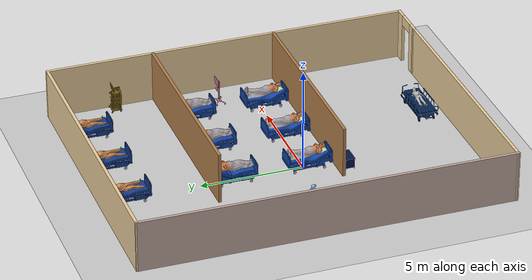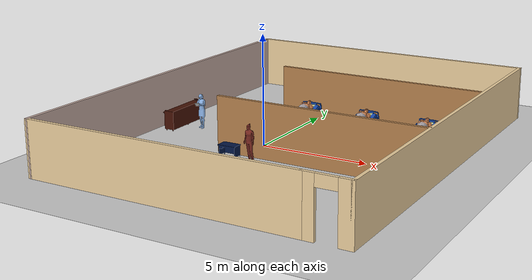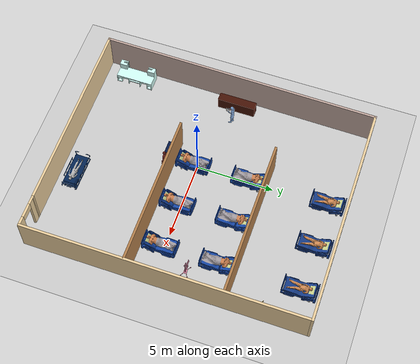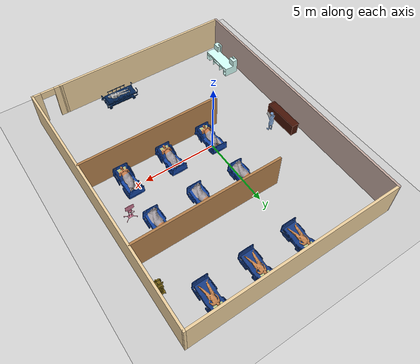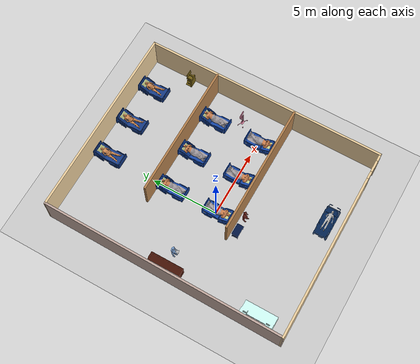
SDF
<?xml version="1.0" ?>

<sdf version="1.5">
	<world name="default">
		<!-- A global light source -->
		<include>
			<uri>model://sun</uri>
		</include>

		<!-- A ground plane -->
		<include>
			<uri>model://ground_plane</uri>
		</include>
<!-- ______________________ELDER PATIENTS_______________________________________________________________________________________________________________-->
<!-- parallel bed 1 -->
		<include>
			<uri>model://elder_patient</uri>
			<pose>0 -0.3 0 0 0 1.5708</pose>
		</include>

		<include>
			<uri>model://elder_patient</uri>
			<pose>3 -0.3 0 0 0 1.5708</pose>
		</include>
		<include>
			<uri>model://elder_patient</uri>
			<pose>6 -0.3 0 0 0 1.5708</pose>
		</include>
<!-- parallel bed 2 -->
		<include>
			<uri>model://elder_patient</uri>
			<pose>0 3.5 0 0 0 -1.5708</pose>
		</include>
		<include>
			<uri>model://elder_patient</uri>
			<pose>3 3.5 0 0 0 -1.5708</pose>
		</include>
		<include>
			<uri>model://elder_patient</uri>
			<pose>6 3.5 0 0 0 -1.5708</pose>
		</include>
<!-- parallel bed 1 - WOMEN PATIENTS -->
		<include>
			<uri>model://women_patient</uri>
			<pose>0 8.6 0 0 0 -1.5708</pose>
		</include>
		<include>
			<uri>model://women_patient</uri>
			<pose>3 8.6 0 0 0 -1.5708</pose>
		</include>
		<include>
			<uri>model://women_patient</uri>
			<pose>6 8.6 0 0 0 -1.5708</pose>
		</include>
<!-- Scrub __________________-->
		<include>
			<uri>model://scrub</uri>
			<pose>0.5 -2 0 0 0 -1.5708</pose>
		</include>
<!-- Desk __________________-->
		<include>
			<uri>model://desk</uri>
			<pose>-0.5 -2 0 0 0 -1.5708</pose>
		</include>

<!-- Trolley patient __________________-->
		<include>
			<uri>model://trolley_patient</uri>
			<pose>3 -7 0 0 0 -1.5708</pose>
		</include>

		<include>
			<uri>model://nurse</uri>
			<pose>-4 1 0 0 0 -1.5708</pose>
		</include>

		<include>
			<uri>model://nurse_table</uri>
			<pose>-5 1 0 0 0 -1.5708</pose>
		</include>

		<include>
			<uri>model://device_1</uri>
			<pose>8 6.6 0 0 0 3.1416</pose>
		</include>

		<include>
			<uri>model://device_2</uri>
			<pose>7 1.8 0 0 0 3.1416</pose>
		</include>

		<include>
			<uri>model://main_table</uri>
			<pose>-5 -6 0 0 0 -1.5708</pose>
		</include>

		<model name='wall1'>
	      <pose frame=''>1.24507 0.818238 0 0 -0 0</pose>
	      <link name='Wall_1'>
	        <collision name='Wall_1_Collision'>
	          <geometry>
	            <box>
	              <size>12.5466 0.15 2.5</size>
	            </box>
	          </geometry>
	          <pose frame=''>0 0 1.25 0 -0 0</pose>
	          <max_contacts>10</max_contacts>
	          <surface>
	            <contact>
	              <ode/>
	            </contact>
	            <bounce/>
	            <friction>
	              <torsional>
	                <ode/>
	              </torsional>
	              <ode/>
	            </friction>
	          </surface>
	        </collision>
	        <visual name='Wall_1_Visual'>
	          <pose frame=''>0 0 1.25 0 -0 0</pose>
	          <geometry>
	            <box>
	              <size>12.5466 0.15 2.5</size>
	            </box>
	          </geometry>
	          <material>
	            <script>
	              <uri>file://media/materials/scripts/gazebo.material</uri>
	              <name>Gazebo/Grey</name>
	            </script>
	            <ambient>0.921569 0.807843 0.615686 1</ambient>
	          </material>
	        </visual>
	        <pose frame=''>-0.94786 -8.925 0 0 -0 0.003753</pose>
	        <self_collide>0</self_collide>
	        <kinematic>0</kinematic>
	        <gravity>1</gravity>
	      </link>
	      <link name='Wall_14'>
	        <collision name='Wall_14_Collision'>
	          <geometry>
	            <box>
	              <size>18.0476 0.15 2.5</size>
	            </box>
	          </geometry>
	          <pose frame=''>0 0 1.25 0 -0 0</pose>
	          <max_contacts>10</max_contacts>
	          <surface>
	            <contact>
	              <ode/>
	            </contact>
	            <bounce/>
	            <friction>
	              <torsional>
	                <ode/>
	              </torsional>
	              <ode/>
	            </friction>
	          </surface>
	        </collision>
	        <visual name='Wall_14_Visual'>
	          <pose frame=''>0 0 1.25 0 -0 0</pose>
	          <geometry>
	            <box>
	              <size>18.0476 0.15 2.5</size>
	            </box>
	          </geometry>
	          <material>
	            <script>
	              <uri>file://media/materials/scripts/gazebo.material</uri>
	              <name>Gazebo/Grey</name>
	            </script>
	            <ambient>0.760784 0.662745 0.627451 1</ambient>
	          </material>
	        </visual>
	        <pose frame=''>-7.0496 0 0 0 -0 1.56001</pose>
	        <self_collide>0</self_collide>
	        <kinematic>0</kinematic>
	        <gravity>1</gravity>
	      </link>
	      <link name='Wall_2'>
	        <pose frame=''>6.1754 -8.90174 0 0 -0 0</pose>
	        <visual name='Wall_2_Visual_0'>
	          <pose frame=''>-0.760138 0 1.25 0 -0 0</pose>
	          <geometry>
	            <box>
	              <size>0.572772 0.15 2.5</size>
	            </box>
	          </geometry>
	          <material>
	            <script>
	              <uri>file://media/materials/scripts/gazebo.material</uri>
	              <name>Gazebo/Grey</name>
	            </script>
	            <ambient>0.921569 0.807843 0.615686 1</ambient>
	          </material>
	        </visual>
	        <collision name='Wall_2_Collision_0'>
	          <geometry>
	            <box>
	              <size>0.572772 0.15 2.5</size>
	            </box>
	          </geometry>
	          <pose frame=''>-0.760138 0 1.25 0 -0 0</pose>
	          <max_contacts>10</max_contacts>
	          <surface>
	            <contact>
	              <ode/>
	            </contact>
	            <bounce/>
	            <friction>
	              <torsional>
	                <ode/>
	              </torsional>
	              <ode/>
	            </friction>
	          </surface>
	        </collision>
	        <visual name='Wall_2_Visual_1'>
	          <pose frame=''>0.736386 0 1.25 0 -0 0</pose>
	          <geometry>
	            <box>
	              <size>0.620276 0.15 2.5</size>
	            </box>
	          </geometry>
	          <material>
	            <script>
	              <uri>file://media/materials/scripts/gazebo.material</uri>
	              <name>Gazebo/Grey</name>
	            </script>
	            <ambient>0.921569 0.807843 0.615686 1</ambient>
	          </material>
	        </visual>
	        <collision name='Wall_2_Collision_1'>
	          <geometry>
	            <box>
	              <size>0.620276 0.15 2.5</size>
	            </box>
	          </geometry>
	          <pose frame=''>0.736386 0 1.25 0 -0 0</pose>
	          <max_contacts>10</max_contacts>
	          <surface>
	            <contact>
	              <ode/>
	            </contact>
	            <bounce/>
	            <friction>
	              <torsional>
	                <ode/>
	              </torsional>
	              <ode/>
	            </friction>
	          </surface>
	        </collision>
	        <visual name='Wall_2_Visual_2'>
	          <pose frame=''>-0.023752 0 2.25 0 -0 0</pose>
	          <geometry>
	            <box>
	              <size>0.9 0.15 0.5</size>
	            </box>
	          </geometry>
	          <material>
	            <script>
	              <uri>file://media/materials/scripts/gazebo.material</uri>
	              <name>Gazebo/Grey</name>
	            </script>
	            <ambient>0.921569 0.807843 0.615686 1</ambient>
	          </material>
	        </visual>
	        <collision name='Wall_2_Collision_2'>
	          <geometry>
	            <box>
	              <size>0.9 0.15 0.5</size>
	            </box>
	          </geometry>
	          <pose frame=''>-0.023752 0 2.25 0 -0 0</pose>
	          <max_contacts>10</max_contacts>
	          <surface>
	            <contact>
	              <ode/>
	            </contact>
	            <bounce/>
	            <friction>
	              <torsional>
	                <ode/>
	              </torsional>
	              <ode/>
	            </friction>
	          </surface>
	        </collision>
	        <self_collide>0</self_collide>
	        <kinematic>0</kinematic>
	        <gravity>1</gravity>
	      </link>
	      <link name='Wall_25'>
	        <collision name='Wall_25_Collision'>
	          <geometry>
	            <box>
	              <size>10 0.15 2.5</size>
	            </box>
	          </geometry>
	          <pose frame=''>0 0 1.25 0 -0 0</pose>
	          <max_contacts>10</max_contacts>
	          <surface>
	            <contact>
	              <ode/>
	            </contact>
	            <bounce/>
	            <friction>
	              <torsional>
	                <ode/>
	              </torsional>
	              <ode/>
	            </friction>
	          </surface>
	        </collision>
	        <visual name='Wall_25_Visual'>
	          <pose frame=''>0 0 1.25 0 -0 0</pose>
	          <geometry>
	            <box>
	              <size>10 0.15 2.5</size>
	            </box>
	          </geometry>
	          <material>
	            <script>
	              <uri>file://media/materials/scripts/gazebo.material</uri>
	              <name>Gazebo/Wood</name>
	            </script>
	            <ambient>0.921569 0.807843 0.615686 1</ambient>
	          </material>
	        </visual>
	        <pose frame=''>2.15713 3.7541 0 0 -0 3.14159</pose>
	        <self_collide>0</self_collide>
	        <kinematic>0</kinematic>
	        <gravity>1</gravity>
	      </link>
	      <link name='Wall_28'>
	        <collision name='Wall_28_Collision'>
	          <geometry>
	            <box>
	              <size>9.75 0.15 2.5</size>
	            </box>
	          </geometry>
	          <pose frame=''>0 0 1.25 0 -0 0</pose>
	          <max_contacts>10</max_contacts>
	          <surface>
	            <contact>
	              <ode/>
	            </contact>
	            <bounce/>
	            <friction>
	              <torsional>
	                <ode/>
	              </torsional>
	              <ode/>
	            </friction>
	          </surface>
	        </collision>
	        <visual name='Wall_28_Visual'>
	          <pose frame=''>0 0 1.25 0 -0 0</pose>
	          <geometry>
	            <box>
	              <size>9.75 0.15 2.5</size>
	            </box>
	          </geometry>
	          <material>
	            <script>
	              <uri>file://media/materials/scripts/gazebo.material</uri>
	              <name>Gazebo/Wood</name>
	            </script>
	            <ambient>1 1 1 1</ambient>
	          </material>
	        </visual>
	        <pose frame=''>2.28213 -2.34053 0 0 -0 3.14159</pose>
	        <self_collide>0</self_collide>
	        <kinematic>0</kinematic>
	        <gravity>1</gravity>
	      </link>
	      <link name='Wall_3'>
	        <collision name='Wall_3_Collision'>
	          <geometry>
	            <box>
	              <size>18 0.15 2.5</size>
	            </box>
	          </geometry>
	          <pose frame=''>0 0 1.25 0 -0 0</pose>
	          <max_contacts>10</max_contacts>
	          <surface>
	            <contact>
	              <ode/>
	            </contact>
	            <bounce/>
	            <friction>
	              <torsional>
	                <ode/>
	              </torsional>
	              <ode/>
	            </friction>
	          </surface>
	        </collision>
	        <visual name='Wall_3_Visual'>
	          <pose frame=''>0 0 1.25 0 -0 0</pose>
	          <geometry>
	            <box>
	              <size>18 0.15 2.5</size>
	            </box>
	          </geometry>
	          <material>
	            <script>
	              <uri>file://media/materials/scripts/gazebo.material</uri>
	              <name>Gazebo/Grey</name>
	            </script>
	            <ambient>0.921569 0.807843 0.615686 1</ambient>
	          </material>
	        </visual>
	        <pose frame=''>7.14693 0.023262 0 0 -0 1.5708</pose>
	        <self_collide>0</self_collide>
	        <kinematic>0</kinematic>
	        <gravity>1</gravity>
	      </link>
	      <link name='Wall_4'>
	        <collision name='Wall_4_Collision'>
	          <geometry>
	            <box>
	              <size>14.25 0.15 2.5</size>
	            </box>
	          </geometry>
	          <pose frame=''>0 0 1.25 0 -0 0</pose>
	          <max_contacts>10</max_contacts>
	          <surface>
	            <contact>
	              <ode/>
	            </contact>
	            <bounce/>
	            <friction>
	              <torsional>
	                <ode/>
	              </torsional>
	              <ode/>
	            </friction>
	          </surface>
	        </collision>
	        <visual name='Wall_4_Visual'>
	          <pose frame=''>0 0 1.25 0 -0 0</pose>
	          <geometry>
	            <box>
	              <size>14.25 0.15 2.5</size>
	            </box>
	          </geometry>
	          <material>
	            <script>
	              <uri>file://media/materials/scripts/gazebo.material</uri>
	              <name>Gazebo/Grey</name>
	            </script>
	            <ambient>0.921569 0.807843 0.615686 1</ambient>
	          </material>
	        </visual>
	        <pose frame=''>0.096926 8.94826 0 0 -0 3.14159</pose>
	        <self_collide>0</self_collide>
	        <kinematic>0</kinematic>
	        <gravity>1</gravity>
	      </link>
	      <static>1</static>
	    </model>

	</world>
</sdf>

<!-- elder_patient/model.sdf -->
<sdf version="1.4">
  <model name="elder_patient">
    <pose>0 0 0 0 0 0</pose>
    <static>false</static>
    <link name="link">
      	<collision name="elder_patient_collision">
        	<geometry>
            <mesh>
                <uri>model://elder_patient/meshes/elder_patient.dae</uri>
            </mesh>
        	</geometry>
      	</collision>
 		<visual name="elder_patient_visual">
   			<geometry>
          <mesh>
              <uri>model://elder_patient/meshes/elder_patient.dae</uri>
          </mesh>
   			</geometry>
 		</visual>
    </link>
  </model>
</sdf>

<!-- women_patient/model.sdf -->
<sdf version="1.4">
  <model name="women_patient">
    <pose>0 0 0 0 0 0</pose>
    <static>false</static>
    <link name="link">
      	<collision name="women_patient_collision">
        	<geometry>
            <mesh>
                <uri>model://women_patient/meshes/women_patient.dae</uri>
            </mesh>
        	</geometry>
      	</collision>
 		<visual name="women_patient_visual">
   			<geometry>
          <mesh>
              <uri>model://women_patient/meshes/women_patient.dae</uri>
          </mesh>
   			</geometry>
 		</visual>
    </link>
  </model>
</sdf>

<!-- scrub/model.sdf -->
<sdf version="1.4">
  <model name="scrub">
    <pose>0 0 0 0 0 0</pose>
    <static>false</static>
    <link name="link">
      	<collision name="scrub_collision">
        	<geometry>
            <mesh>
                <uri>model://scrub/meshes/scrub.dae</uri>
            </mesh>
        	</geometry>
      	</collision>
 		<visual name="scrub_visual">
   			<geometry>
          <mesh>
              <uri>model://scrub/meshes/scrub.dae</uri>
          </mesh>
   			</geometry>
 		</visual>
    </link>
  </model>
</sdf>

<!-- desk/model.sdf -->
<sdf version="1.4">
  <model name="desk">
    <pose>0 0 0 0 0 0</pose>
    <static>false</static>
    <link name="link">
      	<collision name="desk_collision">
        	<geometry>
            <mesh>
                <uri>model://desk/meshes/desk.dae</uri>
            </mesh>
        	</geometry>
      	</collision>
 		<visual name="desk_visual">
   			<geometry>
          <mesh>
              <uri>model://desk/meshes/desk.dae</uri>
          </mesh>
   			</geometry>
 		</visual>
    </link>
  </model>
</sdf>

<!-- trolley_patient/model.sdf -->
<sdf version="1.4">
  <model name="trolley_patient">
    <pose>0 0 0 0 0 0</pose>
    <static>false</static>
    <link name="link">
      	<collision name="trolley_patient_collision">
        	<geometry>
            <mesh>
                <uri>model://trolley_patient/meshes/trolley_patient.dae</uri>
            </mesh>
        	</geometry>
      	</collision>
 		<visual name="trolley_patient_visual">
   			<geometry>
          <mesh>
              <uri>model://trolley_patient/meshes/trolley_patient.dae</uri>
          </mesh>
   			</geometry>
 		</visual>
    </link>
  </model>
</sdf>

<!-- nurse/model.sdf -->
<sdf version="1.4">
  <model name="nurse">
    <pose>0 0 0 0 0 0</pose>
    <static>false</static>
    <link name="link">
      	<collision name="nurse_collision">
        	<geometry>
            <mesh>
                <uri>model://nurse/meshes/nurse.dae</uri>
            </mesh>
        	</geometry>
      	</collision>
 		<visual name="nurse_visual">
   			<geometry>
          <mesh>
              <uri>model://nurse/meshes/nurse.dae</uri>
          </mesh>
   			</geometry>
 		</visual>
    </link>
  </model>
</sdf>

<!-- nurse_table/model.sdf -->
<sdf version="1.4">
  <model name="nurse_table">
    <pose>0 0 0 0 0 0</pose>
    <static>false</static>
    <link name="link">
      	<collision name="nurse_table_collision">
        	<geometry>
            <mesh>
                <uri>model://nurse_table/meshes/nurse_table.dae</uri>
            </mesh>
        	</geometry>
      	</collision>
 		<visual name="nurse_table_visual">
   			<geometry>
          <mesh>
              <uri>model://nurse_table/meshes/nurse_table.dae</uri>
          </mesh>
   			</geometry>
 		</visual>
    </link>
  </model>
</sdf>

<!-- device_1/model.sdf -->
<sdf version="1.4">
  <model name="device_1">
    <pose>0 0 0 0 0 0</pose>
    <static>false</static>
    <link name="link">
      	<collision name="device_1_collision">
        	<geometry>
            <mesh>
                <uri>model://device_1/meshes/device_1.dae</uri>
            </mesh>
        	</geometry>
      	</collision>
 		<visual name="device_1_visual">
   			<geometry>
          <mesh>
              <uri>model://device_1/meshes/device_1.dae</uri>
          </mesh>
   			</geometry>
 		</visual>
    </link>
  </model>
</sdf>

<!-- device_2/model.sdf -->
<sdf version="1.4">
  <model name="device_2">
    <pose>0 0 0 0 0 0</pose>
    <static>false</static>
    <link name="link">
      	<collision name="device_2_collision">
        	<geometry>
            <mesh>
                <uri>model://device_2/meshes/device_2.dae</uri>
            </mesh>
        	</geometry>
      	</collision>
 		<visual name="device_2_visual">
   			<geometry>
          <mesh>
              <uri>model://device_2/meshes/device_2.dae</uri>
          </mesh>
   			</geometry>
 		</visual>
    </link>
  </model>
</sdf>

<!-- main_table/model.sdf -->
<sdf version="1.4">
  <model name="main_table">
    <pose>0 0 0 0 0 0</pose>
    <static>false</static>
    <link name="link">
      	<collision name="main_table_collision">
        	<geometry>
            <mesh>
                <uri>model://main_table/meshes/main_table.dae</uri>
            </mesh>
        	</geometry>
      	</collision>
 		<visual name="main_table_visual">
   			<geometry>
          <mesh>
              <uri>model://main_table/meshes/main_table.dae</uri>
          </mesh>
   			</geometry>
 		</visual>
    </link>
  </model>
</sdf>
